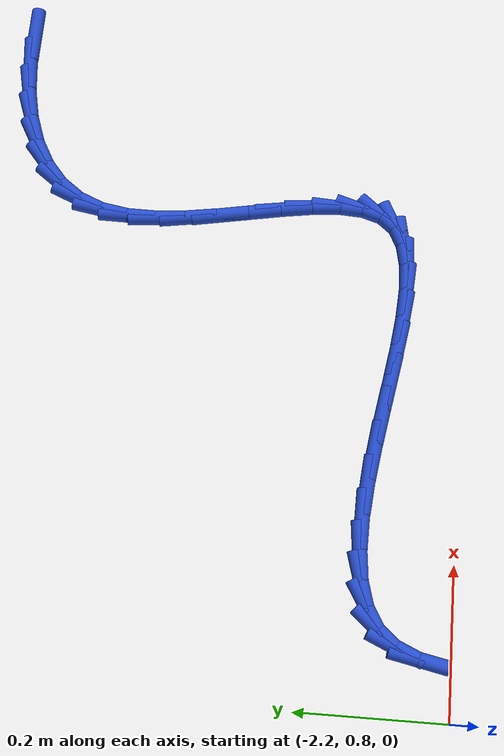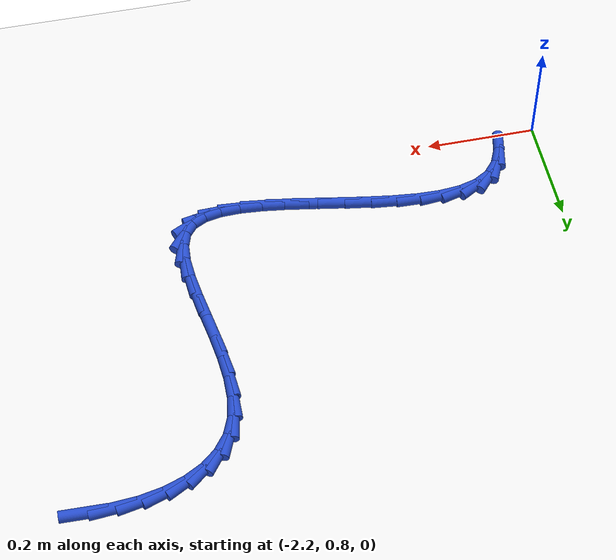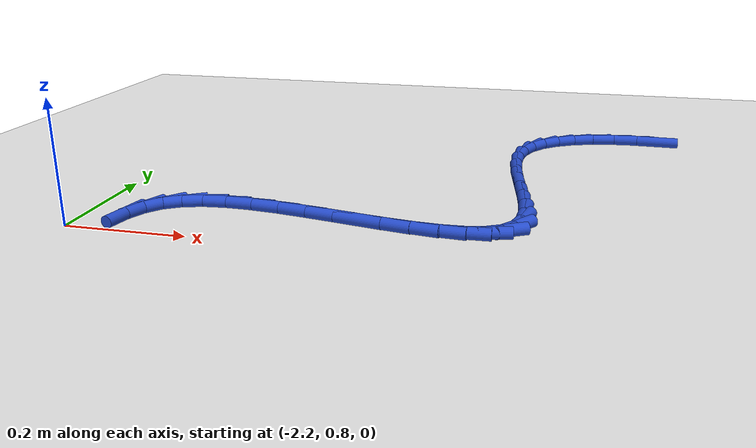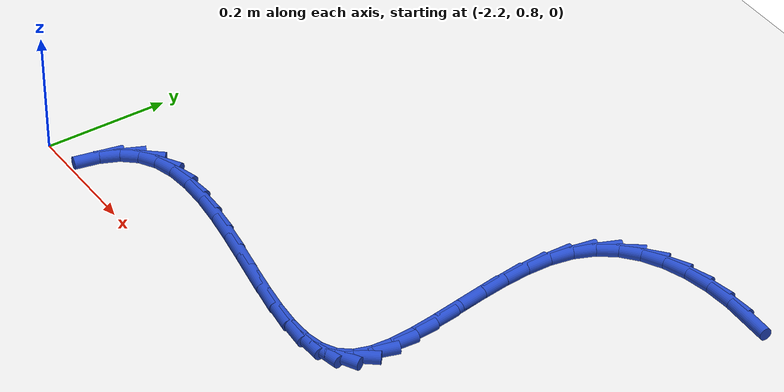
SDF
<sdf version="1.6">
 <world name="default">
  <model name="ground_plane">
   <static>1</static>
   <link name="link">
    <collision name="collision">
     <geometry><plane><normal>0 0 1</normal><size>100 100</size></plane></geometry>
     <surface><friction><ode><mu>100</mu><mu2>50</mu2></ode></friction></surface>
    </collision>
    <visual name="visual">
     <cast_shadows>0</cast_shadows>
     <geometry><plane><normal>0 0 1</normal><size>100 100</size></plane></geometry>
     <material>
      <script><uri>file://media/materials/scripts/gazebo.material</uri><name>Gazebo/WhiteGlow</name></script>
     </material>
    </visual>
   </link>
  </model>
  <model name="line">
   <link name="link_55">
    <pose>-1.2825797260607152 1.43113189639352 0.01 0 1.57 -0.029642143232625876</pose>
    <collision name="collision">
     <geometry><cylinder><radius>0.01</radius><length>0.08</length></cylinder></geometry>
    </collision>
    <visual name="visual">
     <material>
      <script><name>Gazebo/Blue</name><uri>file://media/materials/scripts/gazebo.material</uri></script>
     </material>
     <geometry><cylinder><radius>0.01</radius><length>0.08</length></cylinder></geometry>
    </visual>
   </link>
   <link name="link_56">
    <pose>-1.3284779394298478 1.4324928164254944 0.01 0 1.57 0.07462673791602278</pose>
    <collision name="collision">
     <geometry><cylinder><radius>0.01</radius><length>0.08</length></cylinder></geometry>
    </collision>
    <visual name="visual">
     <material>
      <script><name>Gazebo/Blue</name><uri>file://media/materials/scripts/gazebo.material</uri></script>
     </material>
     <geometry><cylinder><radius>0.01</radius><length>0.08</length></cylinder></geometry>
    </visual>
   </link>
   <link name="link_57">
    <pose>-1.3722675882726536 1.4292188577979104 0.01 0 1.57 0.19309683698919666</pose>
    <collision name="collision">
     <geometry><cylinder><radius>0.01</radius><length>0.08</length></cylinder></geometry>
    </collision>
    <visual name="visual">
     <material>
      <script><name>Gazebo/Blue</name><uri>file://media/materials/scripts/gazebo.material</uri></script>
     </material>
     <geometry><cylinder><radius>0.01</radius><length>0.08</length></cylinder></geometry>
    </visual>
   </link>
   <link name="link_58">
    <pose>-1.4131091819591144 1.421232972698166 0.01 0 1.57 0.33200161515533416</pose>
    <collision name="collision">
     <geometry><cylinder><radius>0.01</radius><length>0.08</length></cylinder></geometry>
    </collision>
    <visual name="visual">
     <material>
      <script><name>Gazebo/Blue</name><uri>file://media/materials/scripts/gazebo.material</uri></script>
     </material>
     <geometry><cylinder><radius>0.01</radius><length>0.08</length></cylinder></geometry>
    </visual>
   </link>
   <link name="link_59">
    <pose>-1.4501632298592102 1.40845811331366 0.01 0 1.57 0.498238991069275</pose>
    <collision name="collision">
     <geometry><cylinder><radius>0.01</radius><length>0.08</length></cylinder></geometry>
    </collision>
    <visual name="visual">
     <material>
      <script><name>Gazebo/Blue</name><uri>file://media/materials/scripts/gazebo.material</uri></script>
     </material>
     <geometry><cylinder><radius>0.01</radius><length>0.08</length></cylinder></geometry>
    </visual>
   </link>
   <link name="link_60">
    <pose>-1.4825902413429226 1.3908172318317915 0.01 0 1.57 0.6972913482822033</pose>
    <collision name="collision">
     <geometry><cylinder><radius>0.01</radius><length>0.08</length></cylinder></geometry>
    </collision>
    <visual name="visual">
     <material>
      <script><name>Gazebo/Blue</name><uri>file://media/materials/scripts/gazebo.material</uri></script>
     </material>
     <geometry><cylinder><radius>0.01</radius><length>0.08</length></cylinder></geometry>
    </visual>
   </link>
   <link name="link_61">
    <pose>-1.5095507257802299 1.3682332804399575 0.01 0 1.57 0.9284226143455631</pose>
    <collision name="collision">
     <geometry><cylinder><radius>0.01</radius><length>0.08</length></cylinder></geometry>
    </collision>
    <visual name="visual">
     <material>
      <script><name>Gazebo/Blue</name><uri>file://media/materials/scripts/gazebo.material</uri></script>
     </material>
     <geometry><cylinder><radius>0.01</radius><length>0.08</length></cylinder></geometry>
    </visual>
   </link>
   <link name="link_62">
    <pose>-1.5302051925411133 1.3406292113255578 0.01 0 1.57 1.178719840497818</pose>
    <collision name="collision">
     <geometry><cylinder><radius>0.01</radius><length>0.08</length></cylinder></geometry>
    </collision>
    <visual name="visual">
     <material>
      <script><name>Gazebo/Blue</name><uri>file://media/materials/scripts/gazebo.material</uri></script>
     </material>
     <geometry><cylinder><radius>0.01</radius><length>0.08</length></cylinder></geometry>
    </visual>
   </link>
   <link name="link_63">
    <pose>-1.5437243359167478 1.307933550936087 0.01 0 1.57 1.4023511764040069</pose>
    <collision name="collision">
     <geometry><cylinder><radius>0.01</radius><length>0.08</length></cylinder></geometry>
    </collision>
    <visual name="visual">
     <material>
      <script><name>Gazebo/Blue</name><uri>file://media/materials/scripts/gazebo.material</uri></script>
     </material>
     <geometry><cylinder><radius>0.01</radius><length>0.08</length></cylinder></geometry>
    </visual>
   </link>
   <link name="link_64">
    <pose>-1.5500872237389078 1.2705172527427155 0.01 0 1.57 1.5569566997113287</pose>
    <collision name="collision">
     <geometry><cylinder><radius>0.01</radius><length>0.08</length></cylinder></geometry>
    </collision>
    <visual name="visual">
     <material>
      <script><name>Gazebo/Blue</name><uri>file://media/materials/scripts/gazebo.material</uri></script>
     </material>
     <geometry><cylinder><radius>0.01</radius><length>0.08</length></cylinder></geometry>
    </visual>
   </link>
   <link name="link_65">
    <pose>-1.5506548184404134 1.229507588285756 0.01 0 1.57 -1.4850334992907446</pose>
    <collision name="collision">
     <geometry><cylinder><radius>0.01</radius><length>0.08</length></cylinder></geometry>
    </collision>
    <visual name="visual">
     <material>
      <script><name>Gazebo/Blue</name><uri>file://media/materials/scripts/gazebo.material</uri></script>
     </material>
     <geometry><cylinder><radius>0.01</radius><length>0.08</length></cylinder></geometry>
    </visual>
   </link>
   <link name="link_66">
    <pose>-1.5469234136646428 1.1861058965776632 0.01 0 1.57 -1.425301975199581</pose>
    <collision name="collision">
     <geometry><cylinder><radius>0.01</radius><length>0.08</length></cylinder></geometry>
    </collision>
    <visual name="visual">
     <material>
      <script><name>Gazebo/Blue</name><uri>file://media/materials/scripts/gazebo.material</uri></script>
     </material>
     <geometry><cylinder><radius>0.01</radius><length>0.08</length></cylinder></geometry>
    </visual>
   </link>
   <link name="link_67">
    <pose>-1.5403893030549747 1.1415135166308916 0.01 0 1.57 -1.3967080713000692</pose>
    <collision name="collision">
     <geometry><cylinder><radius>0.01</radius><length>0.08</length></cylinder></geometry>
    </collision>
    <visual name="visual">
     <material>
      <script><name>Gazebo/Blue</name><uri>file://media/materials/scripts/gazebo.material</uri></script>
     </material>
     <geometry><cylinder><radius>0.01</radius><length>0.08</length></cylinder></geometry>
    </visual>
   </link>
   <link name="link_68">
    <pose>-1.532548780254787 1.0969317874578945 0.01 0 1.57 -1.3961876806317168</pose>
    <collision name="collision">
     <geometry><cylinder><radius>0.01</radius><length>0.08</length></cylinder></geometry>
    </collision>
    <visual name="visual">
     <material>
      <script><name>Gazebo/Blue</name><uri>file://media/materials/scripts/gazebo.material</uri></script>
     </material>
     <geometry><cylinder><radius>0.01</radius><length>0.08</length></cylinder></geometry>
    </visual>
   </link>
   <link name="link_69">
    <pose>-1.5248981389074576 1.053562048071126 0.01 0 1.57 -1.4261833116676152</pose>
    <collision name="collision">
     <geometry><cylinder><radius>0.01</radius><length>0.08</length></cylinder></geometry>
    </collision>
    <visual name="visual">
     <material>
      <script><name>Gazebo/Blue</name><uri>file://media/materials/scripts/gazebo.material</uri></script>
     </material>
     <geometry><cylinder><radius>0.01</radius><length>0.08</length></cylinder></geometry>
    </visual>
   </link>
   <link name="link_70">
    <pose>-1.518933672656366 1.012605637483042 0.01 0 1.57 -1.4964326974717264</pose>
    <collision name="collision">
     <geometry><cylinder><radius>0.01</radius><length>0.08</length></cylinder></geometry>
    </collision>
    <visual name="visual">
     <material>
      <script><name>Gazebo/Blue</name><uri>file://media/materials/scripts/gazebo.material</uri></script>
     </material>
     <geometry><cylinder><radius>0.01</radius><length>0.08</length></cylinder></geometry>
    </visual>
   </link>
   <link name="link_71">
    <pose>-1.5161516751448891 0.9752638947060949 0.01 0 1.57 1.5125464805945248</pose>
    <collision name="collision">
     <geometry><cylinder><radius>0.01</radius><length>0.08</length></cylinder></geometry>
    </collision>
    <visual name="visual">
     <material>
      <script><name>Gazebo/Blue</name><uri>file://media/materials/scripts/gazebo.material</uri></script>
     </material>
     <geometry><cylinder><radius>0.01</radius><length>0.08</length></cylinder></geometry>
    </visual>
   </link>
   <link name="link_72">
    <pose>-1.5180484400164063 0.9427381587527391 0.01 0 1.57 1.2752156661323262</pose>
    <collision name="collision">
     <geometry><cylinder><radius>0.01</radius><length>0.08</length></cylinder></geometry>
    </collision>
    <visual name="visual">
     <material>
      <script><name>Gazebo/Blue</name><uri>file://media/materials/scripts/gazebo.material</uri></script>
     </material>
     <geometry><cylinder><radius>0.01</radius><length>0.08</length></cylinder></geometry>
    </visual>
   </link>
   <link name="link_73">
    <pose>-1.5261202609142954 0.9162297686354288 0.01 0 1.57 0.8897285251145127</pose>
    <collision name="collision">
     <geometry><cylinder><radius>0.01</radius><length>0.08</length></cylinder></geometry>
    </collision>
    <visual name="visual">
     <material>
      <script><name>Gazebo/Blue</name><uri>file://media/materials/scripts/gazebo.material</uri></script>
     </material>
     <geometry><cylinder><radius>0.01</radius><length>0.08</length></cylinder></geometry>
    </visual>
   </link>
   <link name="link_74">
    <pose>-1.5417991670241886 0.8968833402652518 0.01 0 1.57 0.4790133432518073</pose>
    <collision name="collision">
     <geometry><cylinder><radius>0.01</radius><length>0.08</length></cylinder></geometry>
    </collision>
    <visual name="visual">
     <material>
      <script><name>Gazebo/Blue</name><uri>file://media/materials/scripts/gazebo.material</uri></script>
     </material>
     <geometry><cylinder><radius>0.01</radius><length>0.08</length></cylinder></geometry>
    </visual>
   </link>
   <link name="link_75">
    <pose>-1.5652350010926257 0.8847117661418384 0.01 0 1.57 0.1972349059103753</pose>
    <collision name="collision">
     <geometry><cylinder><radius>0.01</radius><length>0.08</length></cylinder></geometry>
    </collision>
    <visual name="visual">
     <material>
      <script><name>Gazebo/Blue</name><uri>file://media/materials/scripts/gazebo.material</uri></script>
     </material>
     <geometry><cylinder><radius>0.01</radius><length>0.08</length></cylinder></geometry>
    </visual>
   </link>
   <link name="link_76">
    <pose>-1.5953956421041149 0.8786846770205027 0.01 0 1.57 0.026578214021773263</pose>
    <collision name="collision">
     <geometry><cylinder><radius>0.01</radius><length>0.08</length></cylinder></geometry>
    </collision>
    <visual name="visual">
     <material>
      <script><name>Gazebo/Blue</name><uri>file://media/materials/scripts/gazebo.material</uri></script>
     </material>
     <geometry><cylinder><radius>0.01</radius><length>0.08</length></cylinder></geometry>
    </visual>
   </link>
   <link name="link_77">
    <pose>-1.631204790753946 0.8777327096361427 0.01 0 1.57 -0.07548011532475457</pose>
    <collision name="collision">
     <geometry><cylinder><radius>0.01</radius><length>0.08</length></cylinder></geometry>
    </collision>
    <visual name="visual">
     <material>
      <script><name>Gazebo/Blue</name><uri>file://media/materials/scripts/gazebo.material</uri></script>
     </material>
     <geometry><cylinder><radius>0.01</radius><length>0.08</length></cylinder></geometry>
    </visual>
   </link>
   <link name="link_78">
    <pose>-1.6715861477374128 0.8807865007236572 0.01 0 1.57 -0.13568260569602955</pose>
    <collision name="collision">
     <geometry><cylinder><radius>0.01</radius><length>0.08</length></cylinder></geometry>
    </collision>
    <visual name="visual">
     <material>
      <script><name>Gazebo/Blue</name><uri>file://media/materials/scripts/gazebo.material</uri></script>
     </material>
     <geometry><cylinder><radius>0.01</radius><length>0.08</length></cylinder></geometry>
    </visual>
   </link>
   <link name="link_79">
    <pose>-1.7154634137498057 0.8867766870179432 0.01 0 1.57 -0.16811197291789604</pose>
    <collision name="collision">
     <geometry><cylinder><radius>0.01</radius><length>0.08</length></cylinder></geometry>
    </collision>
    <visual name="visual">
     <material>
      <script><name>Gazebo/Blue</name><uri>file://media/materials/scripts/gazebo.material</uri></script>
     </material>
     <geometry><cylinder><radius>0.01</radius><length>0.08</length></cylinder></geometry>
    </visual>
   </link>
   <link name="link_80">
    <pose>-1.761760289486417 0.8946339052538997 0.01 0 1.57 -0.17971197210030077</pose>
    <collision name="collision">
     <geometry><cylinder><radius>0.01</radius><length>0.08</length></cylinder></geometry>
    </collision>
    <visual name="visual">
     <material>
      <script><name>Gazebo/Blue</name><uri>file://media/materials/scripts/gazebo.material</uri></script>
     </material>
     <geometry><cylinder><radius>0.01</radius><length>0.08</length></cylinder></geometry>
    </visual>
   </link>
   <link name="link_81">
    <pose>-1.8094004756425381 0.9032887921664244 0.01 0 1.57 -0.17323417871630536</pose>
    <collision name="collision">
     <geometry><cylinder><radius>0.01</radius><length>0.08</length></cylinder></geometry>
    </collision>
    <visual name="visual">
     <material>
      <script><name>Gazebo/Blue</name><uri>file://media/materials/scripts/gazebo.material</uri></script>
     </material>
     <geometry><cylinder><radius>0.01</radius><length>0.08</length></cylinder></geometry>
    </visual>
   </link>
   <link name="link_82">
    <pose>-1.8573076729134614 0.9116719844904158 0.01 0 1.57 -0.1484216213482659</pose>
    <collision name="collision">
     <geometry><cylinder><radius>0.01</radius><length>0.08</length></cylinder></geometry>
    </collision>
    <visual name="visual">
     <material>
      <script><name>Gazebo/Blue</name><uri>file://media/materials/scripts/gazebo.material</uri></script>
     </material>
     <geometry><cylinder><radius>0.01</radius><length>0.08</length></cylinder></geometry>
    </visual>
   </link>
   <link name="link_83">
    <pose>-1.9044055819944772 0.9187141189607715 0.01 0 1.57 -0.10208747646978183</pose>
    <collision name="collision">
     <geometry><cylinder><radius>0.01</radius><length>0.08</length></cylinder></geometry>
    </collision>
    <visual name="visual">
     <material>
      <script><name>Gazebo/Blue</name><uri>file://media/materials/scripts/gazebo.material</uri></script>
     </material>
     <geometry><cylinder><radius>0.01</radius><length>0.08</length></cylinder></geometry>
    </visual>
   </link>
   <link name="link_84">
    <pose>-1.9496179035808794 0.9233458323123902 0.01 0 1.57 -0.02725755781806558</pose>
    <collision name="collision">
     <geometry><cylinder><radius>0.01</radius><length>0.08</length></cylinder></geometry>
    </collision>
    <visual name="visual">
     <material>
      <script><name>Gazebo/Blue</name><uri>file://media/materials/scripts/gazebo.material</uri></script>
     </material>
     <geometry><cylinder><radius>0.01</radius><length>0.08</length></cylinder></geometry>
    </visual>
   </link>
   <link name="link_85">
    <pose>-1.9918683383679576 0.9244977612801693 0.01 0 1.57 0.08867079463796355</pose>
    <collision name="collision">
     <geometry><cylinder><radius>0.01</radius><length>0.08</length></cylinder></geometry>
    </collision>
    <visual name="visual">
     <material>
      <script><name>Gazebo/Blue</name><uri>file://media/materials/scripts/gazebo.material</uri></script>
     </material>
     <geometry><cylinder><radius>0.01</radius><length>0.08</length></cylinder></geometry>
    </visual>
   </link>
   <link name="link_86">
    <pose>-2.030080587051005 0.9211005425990075 0.01 0 1.57 0.2659445642943876</pose>
    <collision name="collision">
     <geometry><cylinder><radius>0.01</radius><length>0.08</length></cylinder></geometry>
    </collision>
    <visual name="visual">
     <material>
      <script><name>Gazebo/Blue</name><uri>file://media/materials/scripts/gazebo.material</uri></script>
     </material>
     <geometry><cylinder><radius>0.01</radius><length>0.08</length></cylinder></geometry>
    </visual>
   </link>
   <link name="link_87">
    <pose>-2.063178350325312 0.9120848130038026 0.01 0 1.57 0.528292547799095</pose>
    <collision name="collision">
     <geometry><cylinder><radius>0.01</radius><length>0.08</length></cylinder></geometry>
    </collision>
    <visual name="visual">
     <material>
      <script><name>Gazebo/Blue</name><uri>file://media/materials/scripts/gazebo.material</uri></script>
     </material>
     <geometry><cylinder><radius>0.01</radius><length>0.08</length></cylinder></geometry>
    </visual>
   </link>
   <link name="link_88">
    <pose>-2.090085328886172 0.8963812092294525 0.01 0 1.57 0.8623361434439096</pose>
    <collision name="collision">
     <geometry><cylinder><radius>0.01</radius><length>0.08</length></cylinder></geometry>
    </collision>
    <visual name="visual">
     <material>
      <script><name>Gazebo/Blue</name><uri>file://media/materials/scripts/gazebo.material</uri></script>
     </material>
     <geometry><cylinder><radius>0.01</radius><length>0.08</length></cylinder></geometry>
    </visual>
   </link>
   <link name="link_89">
    <pose>-2.1099473435790417 0.8732010682751797 0.01 0 1.57 1.1555150802282734</pose>
    <collision name="collision">
     <geometry><cylinder><radius>0.01</radius><length>0.08</length></cylinder></geometry>
    </collision>
    <visual name="visual">
     <material>
      <script><name>Gazebo/Blue</name><uri>file://media/materials/scripts/gazebo.material</uri></script>
     </material>
     <geometry><cylinder><radius>0.01</radius><length>0.08</length></cylinder></geometry>
    </visual>
   </link>
   <link name="link_90">
    <pose>-2.123131728406616 0.8432993919803988 0.01 0 1.57 1.367322001082686</pose>
    <collision name="collision">
     <geometry><cylinder><radius>0.01</radius><length>0.08</length></cylinder></geometry>
    </collision>
    <visual name="visual">
     <material>
      <script><name>Gazebo/Blue</name><uri>file://media/materials/scripts/gazebo.material</uri></script>
     </material>
     <geometry><cylinder><radius>0.01</radius><length>0.08</length></cylinder></geometry>
    </visual>
   </link>
  </model>
 </world>
</sdf>
